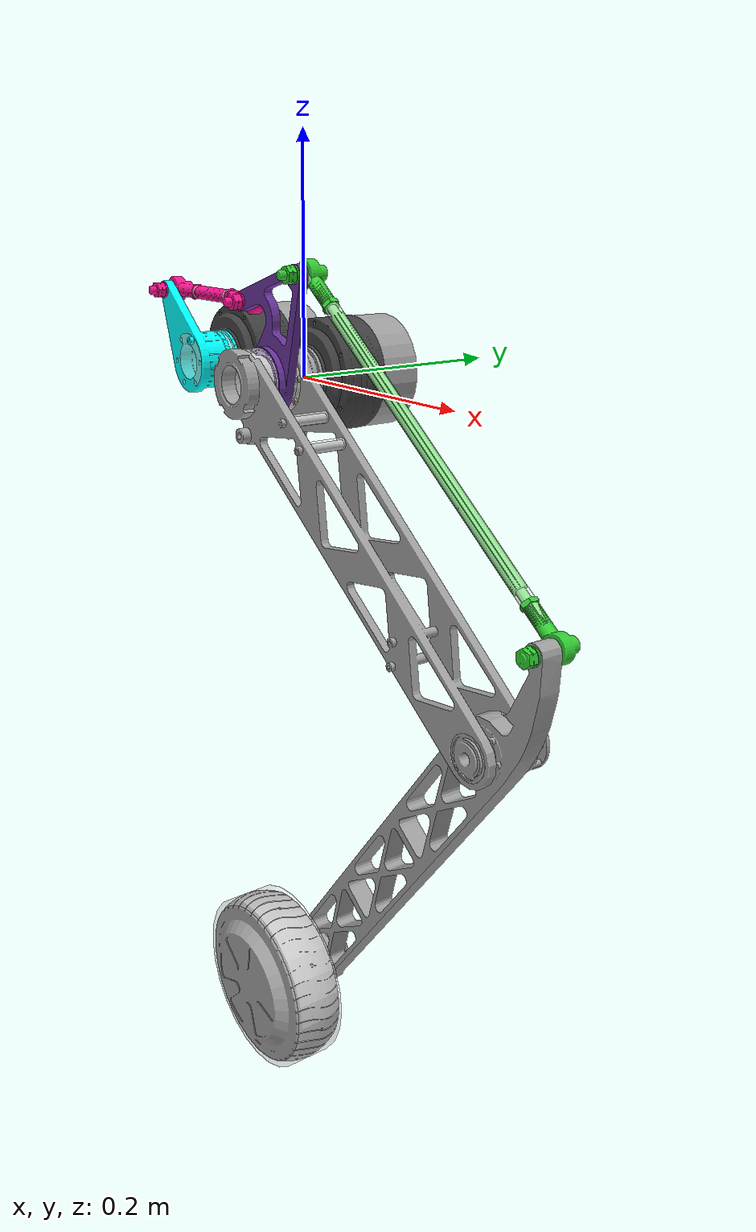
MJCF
<mujoco model="biped_wheeled_leg">
  <compiler angle="radian" meshdir="meshes/"/>
  <option o_solref="0.001 1" o_solimp="0.9 0.91 0.0001 0.5 2"/>
  <asset>
    <mesh name="base_link" content_type="model/stl" file="base_link.STL"/>
    <mesh name="hip_pitch_actuator" content_type="model/stl" file="hip_pitch_actuator.STL"/>
    <mesh name="hip_pitch_link" content_type="model/stl" file="hip_pitch_link.STL"/>
    <mesh name="knee_pitch_link" content_type="model/stl" file="knee_pitch_link.STL"/>
    <mesh name="ankle_wheel_link" content_type="model/stl" file="ankle_wheel_link.STL"/>
    <mesh name="knee_ternery_link" content_type="model/stl" file="knee_ternery_link.STL"/>
    <mesh name="knee_b_rod_link" content_type="model/stl" file="knee_b_rod_link.STL"/>
    <mesh name="knee_pitch_actuator" content_type="model/stl" file="knee_pitch_actuator.STL"/>
    <mesh name="knee_crank_link" content_type="model/stl" file="knee_crank_link.STL"/>
    <mesh name="knee_u_rod_link" content_type="model/stl" file="knee_u_rod_link.STL"/>
  </asset>

  <worldbody>
    <body name="base_link" quat="0.707105 -0.707108 0 0">
      <inertial pos="-0.07 0 0.0709952" quat="0 0.707107 0 0.707107" mass="3.51005" diaginertia="0.0186503 0.0168976 0.00237397"/>
      <geom type="mesh" contype="0" conaffinity="0" group="1" density="0" rgba="0.627451 0.627451 0.627451 1" mesh="base_link"/>
      <body name="hip_pitch_actuator" pos="0 0 -0.03945" quat="0.670822 0.670824 0.2236 0.223599">
        <inertial pos="-6.92884e-05 0.068232 7.41068e-06" quat="0.706478 0.0252882 0.025265 0.706831" mass="2.70656" diaginertia="0.00308089 0.00200266 0.00199536"/>
        <geom type="mesh" contype="0" conaffinity="0" group="1" density="0" rgba="0.25098 0.25098 0.25098 1" mesh="hip_pitch_actuator"/>
        <geom type="cylinder" size="0.028 0.021" euler="1.5707 0 0" pos="0 0 0" rgba="1 1 1 0.5"/>
        <body name="hip_pitch_link">
          <inertial pos="0.122288 0.00340485 -0.000591129" quat="0.498342 0.501653 0.501653 0.498342" mass="2.21436" diaginertia="0.020162 0.0197901 0.000745523"/>
          <joint name="hip_pitch_joint" pos="0 0 0" axis="0 1 0" range="-0.6 0.9" armature="0.014901975000000001" frictionloss="0.3" damping="0.03"/>
          <geom type="mesh" contype="0" conaffinity="0" group="1" density="0" rgba="0.627451 0.627451 0.627451 1" mesh="hip_pitch_link"/>
          <geom type="cylinder" size="0.005 0.021" euler="1.5707 0 0" pos="0.065 0 0.021" rgba="1 1 1 0.5"/>
          <geom type="cylinder" size="0.005 0.021" euler="1.5707 0 0" pos="0.095 0 0.021" rgba="1 1 1 0.5"/>
          <body name="knee_pitch_link" pos="0.375 0 0" quat="0.707105 0 0.707108 0">
            <inertial pos="0.148784 0.000713563 0.00217024" quat="0.501825 0.498959 0.496599 0.502595" mass="2.15352" diaginertia="0.0413684 0.0408434 0.000706617"/>
            <joint name="knee_pitch_joint" pos="0 0 0" axis="0 1 0" range="-1.1 1.5"/>
            <geom type="mesh" contype="0" conaffinity="0" group="1" density="0" rgba="0.627451 0.627451 0.627451 1" mesh="knee_pitch_link"/>
            <body name="ankle_wheel_link" pos="0.39297 0 0.004716" quat="0.447225 -1.64265e-06 -0.894422 1.64265e-06">
              <inertial pos="-3.19801e-06 -0.0458553 -6.54249e-06" quat="0.377742 0.597818 0.597612 0.377869" mass="7.47242" diaginertia="0.0210808 0.0123658 0.0123656"/>
              <joint name="ankle_wheel_joint" pos="0 0 0" axis="0 1 0" frictionloss="1" damping="0.1"/>
              <geom type="mesh" contype="0" conaffinity="0" group="1" density="0" rgba="0.627451 0.627451 0.627451 1" mesh="ankle_wheel_link"/>
              <geom type="cylinder" size="0.08 0.021" euler="1.5707 0 0" pos="0 -0.045 0" rgba="1 1 1 0.5"/>
            </body>
          </body>
          <body name="knee_ternery_link">
            <inertial pos="-0.0153169 0.00369448 0.0292857" quat="0.688575 -0.179464 -0.160542 0.68402" mass="0.300664" diaginertia="0.000428677 0.000274198 0.000158953"/>
            <joint name="knee_ternery_joint" pos="0 0 0" axis="0 1 0" range="-3 1.16"/>
            <geom type="mesh" contype="0" conaffinity="0" group="1" density="0" rgba="0.398438 0.199219 0.597656 1" mesh="knee_ternery_link"/>
            <body name="knee_b_rod_link" pos="-0.018545 0.015 0.098265">
              <inertial pos="0.188395 -0.00152232 0" quat="0 0.707107 0 0.707107" mass="0.410882" diaginertia="0.00197372 0.00196739 1.66426e-05"/>
              <joint name="knee_b_rod_joint" pos="0 0 0" axis="0 1 0"/>
              <geom type="mesh" contype="0" conaffinity="0" group="1" density="0" rgba="0.195312 0.800781 0.195312 1" mesh="knee_b_rod_link"/>
              <geom type="capsule" size="0.006 0.1785" pos="0.1785 0 0" euler="0 1.5707 0" rgba="1 1 1 0.5"/>
            </body>
          </body>
        </body>
      </body>
      <body name="knee_pitch_actuator" pos="-0.14 0 -0.03445" quat="0.332967 0.332968 -0.623806 -0.623804">
        <inertial pos="5.09633e-05 0.063232 4.75241e-05" quat="0.270579 0.653429 0.653098 0.270705" mass="2.70656" diaginertia="0.00308089 0.00200266 0.00199536"/>
        <geom type="mesh" contype="0" conaffinity="0" group="1" density="0" rgba="0.25098 0.25098 0.25098 1" mesh="knee_pitch_actuator"/>
        <geom type="cylinder" size="0.026 0.021" euler="1.5707 0 0" pos="0 0.017 0" rgba="1 1 1 0.5"/>
        <body name="knee_crank_link">
          <inertial pos="0.00821808 0.0140749 -7.49109e-05" quat="0.501458 0.501458 0.498537 0.498537" mass="0.578923" diaginertia="0.000360458 0.000268787 0.000136005"/>
          <joint name="knee_crank_joint" pos="0 0 0" axis="0 1 0" armature="0.014901975000000001" frictionloss="0.3" damping="0.03"/>
          <geom type="mesh" contype="0" conaffinity="0" group="1" density="0" rgba="0 1 1 1" mesh="knee_crank_link"/>
          <body name="knee_u_rod_link" pos="0.075 0.01 0" quat="0.470869 -1.51092e-06 0.882203 -1.51092e-06">
            <inertial pos="0.07 -0.00152232 0" quat="0 0.707107 0 0.707107" mass="0.210882" diaginertia="0.00009372 0.00008739 1.66426e-05"/>
            <joint name="knee_u_rod_joint" pos="0 0 0" axis="0 1 0"/>
            <geom type="mesh" contype="0" conaffinity="0" group="1" density="0" rgba="1 0.078125 0.574219 1" mesh="knee_u_rod_link"/>
            <geom type="capsule" size="0.006 0.07" pos="0.07 0 0" euler="0 1.5707 0" rgba="1 1 1 0.5"/>
          </body>
        </body>
      </body>
    </body>
  </worldbody>

  <equality>
    <connect name="knee_u_rod_constraint" body1="knee_u_rod_link" body2="knee_ternery_link" anchor="0.14 0 0" solref="0.001"/>
    <connect name="knee_b_rod_constraint" body1="knee_b_rod_link" body2="knee_pitch_link" anchor="0.375 0 0" solref="0.001"/>
  </equality>

  <actuator>
    <position name="hip_pitch_actuator" joint="hip_pitch_joint" kp="200" kv="10" ctrlrange="-1 1"/>
    <position name="knee_crank_actuator" joint="knee_crank_joint" kp="200" kv="10" ctrlrange="-0.5 2.1"/>
  </actuator>

</mujoco>
